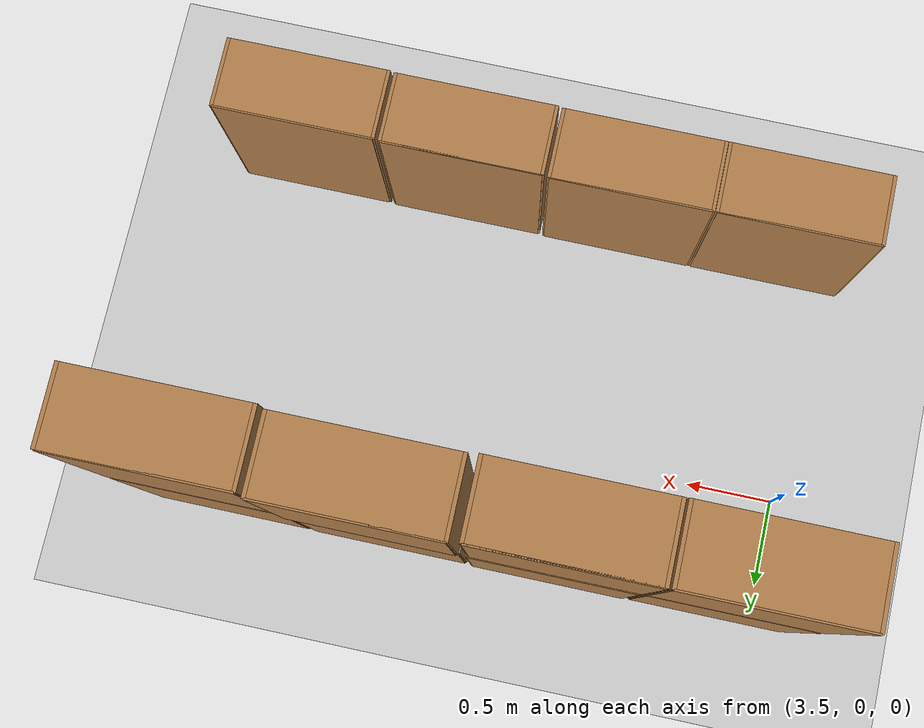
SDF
<sdf version="1.6">
 <world name="default">
  <model name="ground_plane">
   <static>1</static>
   <link name="link">
    <collision name="collision">
     <geometry><plane><normal>0 0 1</normal><size>100 100</size></plane></geometry>
     <surface>
      <contact><collide_bitmask>65535</collide_bitmask></contact>
      <friction><ode><mu>100</mu><mu2>50</mu2></ode></friction>
     </surface>
    </collision>
    <visual name="visual">
     <cast_shadows>0</cast_shadows>
     <geometry><plane><normal>0 0 1</normal><size>100 100</size></plane></geometry>
     <material>
      <script><uri>file://media/materials/scripts/gazebo.material</uri><name>Gazebo/Grey</name></script>
     </material>
    </visual>
   </link>
  </model>
  <model name="bookshelf">
   <static>1</static>
   <link name="link">
    <inertial><mass>1</mass></inertial>
    <collision name="back">
     <pose>0 0.005 0.6 0 -0 0</pose>
     <geometry><box><size>0.9 0.01 1.2</size></box></geometry>
    </collision>
    <visual name="visual1">
     <pose>0 0.005 0.6 0 -0 0</pose>
     <geometry><box><size>0.9 0.01 1.2</size></box></geometry>
     <material>
      <script><uri>file://media/materials/scripts/gazebo.material</uri><name>Gazebo/Wood</name></script>
     </material>
    </visual>
    <collision name="left_side">
     <pose>0.45 -0.195 0.6 0 -0 0</pose>
     <geometry><box><size>0.02 0.4 1.2</size></box></geometry>
    </collision>
    <visual name="visual2">
     <pose>0.45 -0.195 0.6 0 -0 0</pose>
     <geometry><box><size>0.02 0.4 1.2</size></box></geometry>
     <material>
      <script><uri>file://media/materials/scripts/gazebo.material</uri><name>Gazebo/Wood</name></script>
     </material>
    </visual>
    <collision name="right_side">
     <pose>-0.45 -0.195 0.6 0 -0 0</pose>
     <geometry><box><size>0.02 0.4 1.2</size></box></geometry>
    </collision>
    <visual name="visual3">
     <pose>-0.45 -0.195 0.6 0 -0 0</pose>
     <geometry><box><size>0.02 0.4 1.2</size></box></geometry>
     <material>
      <script><uri>file://media/materials/scripts/gazebo.material</uri><name>Gazebo/Wood</name></script>
     </material>
    </visual>
    <collision name="bottom">
     <pose>0 -0.195 0.03 0 -0 0</pose>
     <geometry><box><size>0.88 0.4 0.06</size></box></geometry>
    </collision>
    <visual name="visual4">
     <pose>0 -0.195 0.03 0 -0 0</pose>
     <geometry><box><size>0.88 0.4 0.06</size></box></geometry>
     <material>
      <script><uri>file://media/materials/scripts/gazebo.material</uri><name>Gazebo/Wood</name></script>
     </material>
    </visual>
    <collision name="top">
     <pose>0 -0.195 1.19 0 -0 0</pose>
     <geometry><box><size>0.88 0.4 0.02</size></box></geometry>
    </collision>
    <visual name="visual5">
     <pose>0 -0.195 1.19 0 -0 0</pose>
     <geometry><box><size>0.88 0.4 0.02</size></box></geometry>
     <material>
      <script><uri>file://media/materials/scripts/gazebo.material</uri><name>Gazebo/Wood</name></script>
     </material>
    </visual>
    <collision name="low_shelf">
     <pose>0 -0.195 0.43 0 -0 0</pose>
     <geometry><box><size>0.88 0.4 0.02</size></box></geometry>
    </collision>
    <visual name="visual6">
     <pose>0 -0.195 0.43 0 -0 0</pose>
     <geometry><box><size>0.88 0.4 0.02</size></box></geometry>
     <material>
      <script><uri>file://media/materials/scripts/gazebo.material</uri><name>Gazebo/Wood</name></script>
     </material>
    </visual>
    <collision name="high_shelf">
     <pose>0 -0.195 0.8 0 -0 0</pose>
     <geometry><box><size>0.88 0.4 0.02</size></box></geometry>
    </collision>
    <visual name="visual7">
     <pose>0 -0.195 0.8 0 -0 0</pose>
     <geometry><box><size>0.88 0.4 0.02</size></box></geometry>
     <material>
      <script><uri>file://media/materials/scripts/gazebo.material</uri><name>Gazebo/Wood</name></script>
     </material>
    </visual>
   </link>
   <pose>3.75992 0.728747 0 0 -0 0</pose>
  </model>
  <model name="bookshelf_0">
   <static>1</static>
   <link name="link">
    <inertial><mass>1</mass></inertial>
    <collision name="back">
     <pose>0 0.005 0.6 0 -0 0</pose>
     <geometry><box><size>0.9 0.01 1.2</size></box></geometry>
    </collision>
    <visual name="visual1">
     <pose>0 0.005 0.6 0 -0 0</pose>
     <geometry><box><size>0.9 0.01 1.2</size></box></geometry>
     <material>
      <script><uri>file://media/materials/scripts/gazebo.material</uri><name>Gazebo/Wood</name></script>
     </material>
    </visual>
    <collision name="left_side">
     <pose>0.45 -0.195 0.6 0 -0 0</pose>
     <geometry><box><size>0.02 0.4 1.2</size></box></geometry>
    </collision>
    <visual name="visual2">
     <pose>0.45 -0.195 0.6 0 -0 0</pose>
     <geometry><box><size>0.02 0.4 1.2</size></box></geometry>
     <material>
      <script><uri>file://media/materials/scripts/gazebo.material</uri><name>Gazebo/Wood</name></script>
     </material>
    </visual>
    <collision name="right_side">
     <pose>-0.45 -0.195 0.6 0 -0 0</pose>
     <geometry><box><size>0.02 0.4 1.2</size></box></geometry>
    </collision>
    <visual name="visual3">
     <pose>-0.45 -0.195 0.6 0 -0 0</pose>
     <geometry><box><size>0.02 0.4 1.2</size></box></geometry>
     <material>
      <script><uri>file://media/materials/scripts/gazebo.material</uri><name>Gazebo/Wood</name></script>
     </material>
    </visual>
    <collision name="bottom">
     <pose>0 -0.195 0.03 0 -0 0</pose>
     <geometry><box><size>0.88 0.4 0.06</size></box></geometry>
    </collision>
    <visual name="visual4">
     <pose>0 -0.195 0.03 0 -0 0</pose>
     <geometry><box><size>0.88 0.4 0.06</size></box></geometry>
     <material>
      <script><uri>file://media/materials/scripts/gazebo.material</uri><name>Gazebo/Wood</name></script>
     </material>
    </visual>
    <collision name="top">
     <pose>0 -0.195 1.19 0 -0 0</pose>
     <geometry><box><size>0.88 0.4 0.02</size></box></geometry>
    </collision>
    <visual name="visual5">
     <pose>0 -0.195 1.19 0 -0 0</pose>
     <geometry><box><size>0.88 0.4 0.02</size></box></geometry>
     <material>
      <script><uri>file://media/materials/scripts/gazebo.material</uri><name>Gazebo/Wood</name></script>
     </material>
    </visual>
    <collision name="low_shelf">
     <pose>0 -0.195 0.43 0 -0 0</pose>
     <geometry><box><size>0.88 0.4 0.02</size></box></geometry>
    </collision>
    <visual name="visual6">
     <pose>0 -0.195 0.43 0 -0 0</pose>
     <geometry><box><size>0.88 0.4 0.02</size></box></geometry>
     <material>
      <script><uri>file://media/materials/scripts/gazebo.material</uri><name>Gazebo/Wood</name></script>
     </material>
    </visual>
    <collision name="high_shelf">
     <pose>0 -0.195 0.8 0 -0 0</pose>
     <geometry><box><size>0.88 0.4 0.02</size></box></geometry>
    </collision>
    <visual name="visual7">
     <pose>0 -0.195 0.8 0 -0 0</pose>
     <geometry><box><size>0.88 0.4 0.02</size></box></geometry>
     <material>
      <script><uri>file://media/materials/scripts/gazebo.material</uri><name>Gazebo/Wood</name></script>
     </material>
    </visual>
   </link>
   <pose>4.70239 0.732854 0 0 -0 0</pose>
  </model>
  <model name="bookshelf_1">
   <static>1</static>
   <link name="link">
    <inertial><mass>1</mass></inertial>
    <collision name="back">
     <pose>0 0.005 0.6 0 -0 0</pose>
     <geometry><box><size>0.9 0.01 1.2</size></box></geometry>
    </collision>
    <visual name="visual1">
     <pose>0 0.005 0.6 0 -0 0</pose>
     <geometry><box><size>0.9 0.01 1.2</size></box></geometry>
     <material>
      <script><uri>file://media/materials/scripts/gazebo.material</uri><name>Gazebo/Wood</name></script>
     </material>
    </visual>
    <collision name="left_side">
     <pose>0.45 -0.195 0.6 0 -0 0</pose>
     <geometry><box><size>0.02 0.4 1.2</size></box></geometry>
    </collision>
    <visual name="visual2">
     <pose>0.45 -0.195 0.6 0 -0 0</pose>
     <geometry><box><size>0.02 0.4 1.2</size></box></geometry>
     <material>
      <script><uri>file://media/materials/scripts/gazebo.material</uri><name>Gazebo/Wood</name></script>
     </material>
    </visual>
    <collision name="right_side">
     <pose>-0.45 -0.195 0.6 0 -0 0</pose>
     <geometry><box><size>0.02 0.4 1.2</size></box></geometry>
    </collision>
    <visual name="visual3">
     <pose>-0.45 -0.195 0.6 0 -0 0</pose>
     <geometry><box><size>0.02 0.4 1.2</size></box></geometry>
     <material>
      <script><uri>file://media/materials/scripts/gazebo.material</uri><name>Gazebo/Wood</name></script>
     </material>
    </visual>
    <collision name="bottom">
     <pose>0 -0.195 0.03 0 -0 0</pose>
     <geometry><box><size>0.88 0.4 0.06</size></box></geometry>
    </collision>
    <visual name="visual4">
     <pose>0 -0.195 0.03 0 -0 0</pose>
     <geometry><box><size>0.88 0.4 0.06</size></box></geometry>
     <material>
      <script><uri>file://media/materials/scripts/gazebo.material</uri><name>Gazebo/Wood</name></script>
     </material>
    </visual>
    <collision name="top">
     <pose>0 -0.195 1.19 0 -0 0</pose>
     <geometry><box><size>0.88 0.4 0.02</size></box></geometry>
    </collision>
    <visual name="visual5">
     <pose>0 -0.195 1.19 0 -0 0</pose>
     <geometry><box><size>0.88 0.4 0.02</size></box></geometry>
     <material>
      <script><uri>file://media/materials/scripts/gazebo.material</uri><name>Gazebo/Wood</name></script>
     </material>
    </visual>
    <collision name="low_shelf">
     <pose>0 -0.195 0.43 0 -0 0</pose>
     <geometry><box><size>0.88 0.4 0.02</size></box></geometry>
    </collision>
    <visual name="visual6">
     <pose>0 -0.195 0.43 0 -0 0</pose>
     <geometry><box><size>0.88 0.4 0.02</size></box></geometry>
     <material>
      <script><uri>file://media/materials/scripts/gazebo.material</uri><name>Gazebo/Wood</name></script>
     </material>
    </visual>
    <collision name="high_shelf">
     <pose>0 -0.195 0.8 0 -0 0</pose>
     <geometry><box><size>0.88 0.4 0.02</size></box></geometry>
    </collision>
    <visual name="visual7">
     <pose>0 -0.195 0.8 0 -0 0</pose>
     <geometry><box><size>0.88 0.4 0.02</size></box></geometry>
     <material>
      <script><uri>file://media/materials/scripts/gazebo.material</uri><name>Gazebo/Wood</name></script>
     </material>
    </visual>
   </link>
   <pose>5.65072 0.725474 0 0 -0 0</pose>
  </model>
  <model name="bookshelf_2">
   <static>1</static>
   <link name="link">
    <inertial><mass>1</mass></inertial>
    <collision name="back">
     <pose>0 0.005 0.6 0 -0 0</pose>
     <geometry><box><size>0.9 0.01 1.2</size></box></geometry>
    </collision>
    <visual name="visual1">
     <pose>0 0.005 0.6 0 -0 0</pose>
     <geometry><box><size>0.9 0.01 1.2</size></box></geometry>
     <material>
      <script><uri>file://media/materials/scripts/gazebo.material</uri><name>Gazebo/Wood</name></script>
     </material>
    </visual>
    <collision name="left_side">
     <pose>0.45 -0.195 0.6 0 -0 0</pose>
     <geometry><box><size>0.02 0.4 1.2</size></box></geometry>
    </collision>
    <visual name="visual2">
     <pose>0.45 -0.195 0.6 0 -0 0</pose>
     <geometry><box><size>0.02 0.4 1.2</size></box></geometry>
     <material>
      <script><uri>file://media/materials/scripts/gazebo.material</uri><name>Gazebo/Wood</name></script>
     </material>
    </visual>
    <collision name="right_side">
     <pose>-0.45 -0.195 0.6 0 -0 0</pose>
     <geometry><box><size>0.02 0.4 1.2</size></box></geometry>
    </collision>
    <visual name="visual3">
     <pose>-0.45 -0.195 0.6 0 -0 0</pose>
     <geometry><box><size>0.02 0.4 1.2</size></box></geometry>
     <material>
      <script><uri>file://media/materials/scripts/gazebo.material</uri><name>Gazebo/Wood</name></script>
     </material>
    </visual>
    <collision name="bottom">
     <pose>0 -0.195 0.03 0 -0 0</pose>
     <geometry><box><size>0.88 0.4 0.06</size></box></geometry>
    </collision>
    <visual name="visual4">
     <pose>0 -0.195 0.03 0 -0 0</pose>
     <geometry><box><size>0.88 0.4 0.06</size></box></geometry>
     <material>
      <script><uri>file://media/materials/scripts/gazebo.material</uri><name>Gazebo/Wood</name></script>
     </material>
    </visual>
    <collision name="top">
     <pose>0 -0.195 1.19 0 -0 0</pose>
     <geometry><box><size>0.88 0.4 0.02</size></box></geometry>
    </collision>
    <visual name="visual5">
     <pose>0 -0.195 1.19 0 -0 0</pose>
     <geometry><box><size>0.88 0.4 0.02</size></box></geometry>
     <material>
      <script><uri>file://media/materials/scripts/gazebo.material</uri><name>Gazebo/Wood</name></script>
     </material>
    </visual>
    <collision name="low_shelf">
     <pose>0 -0.195 0.43 0 -0 0</pose>
     <geometry><box><size>0.88 0.4 0.02</size></box></geometry>
    </collision>
    <visual name="visual6">
     <pose>0 -0.195 0.43 0 -0 0</pose>
     <geometry><box><size>0.88 0.4 0.02</size></box></geometry>
     <material>
      <script><uri>file://media/materials/scripts/gazebo.material</uri><name>Gazebo/Wood</name></script>
     </material>
    </visual>
    <collision name="high_shelf">
     <pose>0 -0.195 0.8 0 -0 0</pose>
     <geometry><box><size>0.88 0.4 0.02</size></box></geometry>
    </collision>
    <visual name="visual7">
     <pose>0 -0.195 0.8 0 -0 0</pose>
     <geometry><box><size>0.88 0.4 0.02</size></box></geometry>
     <material>
      <script><uri>file://media/materials/scripts/gazebo.material</uri><name>Gazebo/Wood</name></script>
     </material>
    </visual>
   </link>
   <pose>6.59516 0.720973 0 0 -0 0</pose>
  </model>
  <model name="bookshelf_3">
   <static>1</static>
   <link name="link">
    <inertial><mass>1</mass></inertial>
    <collision name="back">
     <pose>0 0.005 0.6 0 -0 0</pose>
     <geometry><box><size>0.9 0.01 1.2</size></box></geometry>
    </collision>
    <visual name="visual1">
     <pose>0 0.005 0.6 0 -0 0</pose>
     <geometry><box><size>0.9 0.01 1.2</size></box></geometry>
     <material>
      <script><uri>file://media/materials/scripts/gazebo.material</uri><name>Gazebo/Wood</name></script>
     </material>
    </visual>
    <collision name="left_side">
     <pose>0.45 -0.195 0.6 0 -0 0</pose>
     <geometry><box><size>0.02 0.4 1.2</size></box></geometry>
    </collision>
    <visual name="visual2">
     <pose>0.45 -0.195 0.6 0 -0 0</pose>
     <geometry><box><size>0.02 0.4 1.2</size></box></geometry>
     <material>
      <script><uri>file://media/materials/scripts/gazebo.material</uri><name>Gazebo/Wood</name></script>
     </material>
    </visual>
    <collision name="right_side">
     <pose>-0.45 -0.195 0.6 0 -0 0</pose>
     <geometry><box><size>0.02 0.4 1.2</size></box></geometry>
    </collision>
    <visual name="visual3">
     <pose>-0.45 -0.195 0.6 0 -0 0</pose>
     <geometry><box><size>0.02 0.4 1.2</size></box></geometry>
     <material>
      <script><uri>file://media/materials/scripts/gazebo.material</uri><name>Gazebo/Wood</name></script>
     </material>
    </visual>
    <collision name="bottom">
     <pose>0 -0.195 0.03 0 -0 0</pose>
     <geometry><box><size>0.88 0.4 0.06</size></box></geometry>
    </collision>
    <visual name="visual4">
     <pose>0 -0.195 0.03 0 -0 0</pose>
     <geometry><box><size>0.88 0.4 0.06</size></box></geometry>
     <material>
      <script><uri>file://media/materials/scripts/gazebo.material</uri><name>Gazebo/Wood</name></script>
     </material>
    </visual>
    <collision name="top">
     <pose>0 -0.195 1.19 0 -0 0</pose>
     <geometry><box><size>0.88 0.4 0.02</size></box></geometry>
    </collision>
    <visual name="visual5">
     <pose>0 -0.195 1.19 0 -0 0</pose>
     <geometry><box><size>0.88 0.4 0.02</size></box></geometry>
     <material>
      <script><uri>file://media/materials/scripts/gazebo.material</uri><name>Gazebo/Wood</name></script>
     </material>
    </visual>
    <collision name="low_shelf">
     <pose>0 -0.195 0.43 0 -0 0</pose>
     <geometry><box><size>0.88 0.4 0.02</size></box></geometry>
    </collision>
    <visual name="visual6">
     <pose>0 -0.195 0.43 0 -0 0</pose>
     <geometry><box><size>0.88 0.4 0.02</size></box></geometry>
     <material>
      <script><uri>file://media/materials/scripts/gazebo.material</uri><name>Gazebo/Wood</name></script>
     </material>
    </visual>
    <collision name="high_shelf">
     <pose>0 -0.195 0.8 0 -0 0</pose>
     <geometry><box><size>0.88 0.4 0.02</size></box></geometry>
    </collision>
    <visual name="visual7">
     <pose>0 -0.195 0.8 0 -0 0</pose>
     <geometry><box><size>0.88 0.4 0.02</size></box></geometry>
     <material>
      <script><uri>file://media/materials/scripts/gazebo.material</uri><name>Gazebo/Wood</name></script>
     </material>
    </visual>
   </link>
   <pose>3.76166 0.727265 1.22144 0 -0 0</pose>
  </model>
  <model name="bookshelf_4">
   <static>1</static>
   <link name="link">
    <inertial><mass>1</mass></inertial>
    <collision name="back">
     <pose>0 0.005 0.6 0 -0 0</pose>
     <geometry><box><size>0.9 0.01 1.2</size></box></geometry>
    </collision>
    <visual name="visual1">
     <pose>0 0.005 0.6 0 -0 0</pose>
     <geometry><box><size>0.9 0.01 1.2</size></box></geometry>
     <material>
      <script><uri>file://media/materials/scripts/gazebo.material</uri><name>Gazebo/Wood</name></script>
     </material>
    </visual>
    <collision name="left_side">
     <pose>0.45 -0.195 0.6 0 -0 0</pose>
     <geometry><box><size>0.02 0.4 1.2</size></box></geometry>
    </collision>
    <visual name="visual2">
     <pose>0.45 -0.195 0.6 0 -0 0</pose>
     <geometry><box><size>0.02 0.4 1.2</size></box></geometry>
     <material>
      <script><uri>file://media/materials/scripts/gazebo.material</uri><name>Gazebo/Wood</name></script>
     </material>
    </visual>
    <collision name="right_side">
     <pose>-0.45 -0.195 0.6 0 -0 0</pose>
     <geometry><box><size>0.02 0.4 1.2</size></box></geometry>
    </collision>
    <visual name="visual3">
     <pose>-0.45 -0.195 0.6 0 -0 0</pose>
     <geometry><box><size>0.02 0.4 1.2</size></box></geometry>
     <material>
      <script><uri>file://media/materials/scripts/gazebo.material</uri><name>Gazebo/Wood</name></script>
     </material>
    </visual>
    <collision name="bottom">
     <pose>0 -0.195 0.03 0 -0 0</pose>
     <geometry><box><size>0.88 0.4 0.06</size></box></geometry>
    </collision>
    <visual name="visual4">
     <pose>0 -0.195 0.03 0 -0 0</pose>
     <geometry><box><size>0.88 0.4 0.06</size></box></geometry>
     <material>
      <script><uri>file://media/materials/scripts/gazebo.material</uri><name>Gazebo/Wood</name></script>
     </material>
    </visual>
    <collision name="top">
     <pose>0 -0.195 1.19 0 -0 0</pose>
     <geometry><box><size>0.88 0.4 0.02</size></box></geometry>
    </collision>
    <visual name="visual5">
     <pose>0 -0.195 1.19 0 -0 0</pose>
     <geometry><box><size>0.88 0.4 0.02</size></box></geometry>
     <material>
      <script><uri>file://media/materials/scripts/gazebo.material</uri><name>Gazebo/Wood</name></script>
     </material>
    </visual>
    <collision name="low_shelf">
     <pose>0 -0.195 0.43 0 -0 0</pose>
     <geometry><box><size>0.88 0.4 0.02</size></box></geometry>
    </collision>
    <visual name="visual6">
     <pose>0 -0.195 0.43 0 -0 0</pose>
     <geometry><box><size>0.88 0.4 0.02</size></box></geometry>
     <material>
      <script><uri>file://media/materials/scripts/gazebo.material</uri><name>Gazebo/Wood</name></script>
     </material>
    </visual>
    <collision name="high_shelf">
     <pose>0 -0.195 0.8 0 -0 0</pose>
     <geometry><box><size>0.88 0.4 0.02</size></box></geometry>
    </collision>
    <visual name="visual7">
     <pose>0 -0.195 0.8 0 -0 0</pose>
     <geometry><box><size>0.88 0.4 0.02</size></box></geometry>
     <material>
      <script><uri>file://media/materials/scripts/gazebo.material</uri><name>Gazebo/Wood</name></script>
     </material>
    </visual>
   </link>
   <pose>4.69249 0.728372 1.22003 0 -0 0</pose>
  </model>
  <model name="bookshelf_5">
   <static>1</static>
   <link name="link">
    <inertial><mass>1</mass></inertial>
    <collision name="back">
     <pose>0 0.005 0.6 0 -0 0</pose>
     <geometry><box><size>0.9 0.01 1.2</size></box></geometry>
    </collision>
    <visual name="visual1">
     <pose>0 0.005 0.6 0 -0 0</pose>
     <geometry><box><size>0.9 0.01 1.2</size></box></geometry>
     <material>
      <script><uri>file://media/materials/scripts/gazebo.material</uri><name>Gazebo/Wood</name></script>
     </material>
    </visual>
    <collision name="left_side">
     <pose>0.45 -0.195 0.6 0 -0 0</pose>
     <geometry><box><size>0.02 0.4 1.2</size></box></geometry>
    </collision>
    <visual name="visual2">
     <pose>0.45 -0.195 0.6 0 -0 0</pose>
     <geometry><box><size>0.02 0.4 1.2</size></box></geometry>
     <material>
      <script><uri>file://media/materials/scripts/gazebo.material</uri><name>Gazebo/Wood</name></script>
     </material>
    </visual>
    <collision name="right_side">
     <pose>-0.45 -0.195 0.6 0 -0 0</pose>
     <geometry><box><size>0.02 0.4 1.2</size></box></geometry>
    </collision>
    <visual name="visual3">
     <pose>-0.45 -0.195 0.6 0 -0 0</pose>
     <geometry><box><size>0.02 0.4 1.2</size></box></geometry>
     <material>
      <script><uri>file://media/materials/scripts/gazebo.material</uri><name>Gazebo/Wood</name></script>
     </material>
    </visual>
    <collision name="bottom">
     <pose>0 -0.195 0.03 0 -0 0</pose>
     <geometry><box><size>0.88 0.4 0.06</size></box></geometry>
    </collision>
    <visual name="visual4">
     <pose>0 -0.195 0.03 0 -0 0</pose>
     <geometry><box><size>0.88 0.4 0.06</size></box></geometry>
     <material>
      <script><uri>file://media/materials/scripts/gazebo.material</uri><name>Gazebo/Wood</name></script>
     </material>
    </visual>
    <collision name="top">
     <pose>0 -0.195 1.19 0 -0 0</pose>
     <geometry><box><size>0.88 0.4 0.02</size></box></geometry>
    </collision>
    <visual name="visual5">
     <pose>0 -0.195 1.19 0 -0 0</pose>
     <geometry><box><size>0.88 0.4 0.02</size></box></geometry>
     <material>
      <script><uri>file://media/materials/scripts/gazebo.material</uri><name>Gazebo/Wood</name></script>
     </material>
    </visual>
    <collision name="low_shelf">
     <pose>0 -0.195 0.43 0 -0 0</pose>
     <geometry><box><size>0.88 0.4 0.02</size></box></geometry>
    </collision>
    <visual name="visual6">
     <pose>0 -0.195 0.43 0 -0 0</pose>
     <geometry><box><size>0.88 0.4 0.02</size></box></geometry>
     <material>
      <script><uri>file://media/materials/scripts/gazebo.material</uri><name>Gazebo/Wood</name></script>
     </material>
    </visual>
    <collision name="high_shelf">
     <pose>0 -0.195 0.8 0 -0 0</pose>
     <geometry><box><size>0.88 0.4 0.02</size></box></geometry>
    </collision>
    <visual name="visual7">
     <pose>0 -0.195 0.8 0 -0 0</pose>
     <geometry><box><size>0.88 0.4 0.02</size></box></geometry>
     <material>
      <script><uri>file://media/materials/scripts/gazebo.material</uri><name>Gazebo/Wood</name></script>
     </material>
    </visual>
   </link>
   <pose>5.65883 0.73552 1.21624 0 -0 0</pose>
  </model>
  <model name="bookshelf_6">
   <static>1</static>
   <link name="link">
    <inertial><mass>1</mass></inertial>
    <collision name="back">
     <pose>0 0.005 0.6 0 -0 0</pose>
     <geometry><box><size>0.9 0.01 1.2</size></box></geometry>
    </collision>
    <visual name="visual1">
     <pose>0 0.005 0.6 0 -0 0</pose>
     <geometry><box><size>0.9 0.01 1.2</size></box></geometry>
     <material>
      <script><uri>file://media/materials/scripts/gazebo.material</uri><name>Gazebo/Wood</name></script>
     </material>
    </visual>
    <collision name="left_side">
     <pose>0.45 -0.195 0.6 0 -0 0</pose>
     <geometry><box><size>0.02 0.4 1.2</size></box></geometry>
    </collision>
    <visual name="visual2">
     <pose>0.45 -0.195 0.6 0 -0 0</pose>
     <geometry><box><size>0.02 0.4 1.2</size></box></geometry>
     <material>
      <script><uri>file://media/materials/scripts/gazebo.material</uri><name>Gazebo/Wood</name></script>
     </material>
    </visual>
    <collision name="right_side">
     <pose>-0.45 -0.195 0.6 0 -0 0</pose>
     <geometry><box><size>0.02 0.4 1.2</size></box></geometry>
    </collision>
    <visual name="visual3">
     <pose>-0.45 -0.195 0.6 0 -0 0</pose>
     <geometry><box><size>0.02 0.4 1.2</size></box></geometry>
     <material>
      <script><uri>file://media/materials/scripts/gazebo.material</uri><name>Gazebo/Wood</name></script>
     </material>
    </visual>
    <collision name="bottom">
     <pose>0 -0.195 0.03 0 -0 0</pose>
     <geometry><box><size>0.88 0.4 0.06</size></box></geometry>
    </collision>
    <visual name="visual4">
     <pose>0 -0.195 0.03 0 -0 0</pose>
     <geometry><box><size>0.88 0.4 0.06</size></box></geometry>
     <material>
      <script><uri>file://media/materials/scripts/gazebo.material</uri><name>Gazebo/Wood</name></script>
     </material>
    </visual>
    <collision name="top">
     <pose>0 -0.195 1.19 0 -0 0</pose>
     <geometry><box><size>0.88 0.4 0.02</size></box></geometry>
    </collision>
    <visual name="visual5">
     <pose>0 -0.195 1.19 0 -0 0</pose>
     <geometry><box><size>0.88 0.4 0.02</size></box></geometry>
     <material>
      <script><uri>file://media/materials/scripts/gazebo.material</uri><name>Gazebo/Wood</name></script>
     </material>
    </visual>
    <collision name="low_shelf">
     <pose>0 -0.195 0.43 0 -0 0</pose>
     <geometry><box><size>0.88 0.4 0.02</size></box></geometry>
    </collision>
    <visual name="visual6">
     <pose>0 -0.195 0.43 0 -0 0</pose>
     <geometry><box><size>0.88 0.4 0.02</size></box></geometry>
     <material>
      <script><uri>file://media/materials/scripts/gazebo.material</uri><name>Gazebo/Wood</name></script>
     </material>
    </visual>
    <collision name="high_shelf">
     <pose>0 -0.195 0.8 0 -0 0</pose>
     <geometry><box><size>0.88 0.4 0.02</size></box></geometry>
    </collision>
    <visual name="visual7">
     <pose>0 -0.195 0.8 0 -0 0</pose>
     <geometry><box><size>0.88 0.4 0.02</size></box></geometry>
     <material>
      <script><uri>file://media/materials/scripts/gazebo.material</uri><name>Gazebo/Wood</name></script>
     </material>
    </visual>
   </link>
   <pose>6.60352 0.719536 1.22219 0 -0 0</pose>
  </model>
  <model name="bookshelf_7">
   <static>1</static>
   <link name="link">
    <inertial><mass>1</mass></inertial>
    <collision name="back">
     <pose>0 0.005 0.6 0 -0 0</pose>
     <geometry><box><size>0.9 0.01 1.2</size></box></geometry>
    </collision>
    <visual name="visual1">
     <pose>0 0.005 0.6 0 -0 0</pose>
     <geometry><box><size>0.9 0.01 1.2</size></box></geometry>
     <material>
      <script><uri>file://media/materials/scripts/gazebo.material</uri><name>Gazebo/Wood</name></script>
     </material>
    </visual>
    <collision name="left_side">
     <pose>0.45 -0.195 0.6 0 -0 0</pose>
     <geometry><box><size>0.02 0.4 1.2</size></box></geometry>
    </collision>
    <visual name="visual2">
     <pose>0.45 -0.195 0.6 0 -0 0</pose>
     <geometry><box><size>0.02 0.4 1.2</size></box></geometry>
     <material>
      <script><uri>file://media/materials/scripts/gazebo.material</uri><name>Gazebo/Wood</name></script>
     </material>
    </visual>
    <collision name="right_side">
     <pose>-0.45 -0.195 0.6 0 -0 0</pose>
     <geometry><box><size>0.02 0.4 1.2</size></box></geometry>
    </collision>
    <visual name="visual3">
     <pose>-0.45 -0.195 0.6 0 -0 0</pose>
     <geometry><box><size>0.02 0.4 1.2</size></box></geometry>
     <material>
      <script><uri>file://media/materials/scripts/gazebo.material</uri><name>Gazebo/Wood</name></script>
     </material>
    </visual>
    <collision name="bottom">
     <pose>0 -0.195 0.03 0 -0 0</pose>
     <geometry><box><size>0.88 0.4 0.06</size></box></geometry>
    </collision>
    <visual name="visual4">
     <pose>0 -0.195 0.03 0 -0 0</pose>
     <geometry><box><size>0.88 0.4 0.06</size></box></geometry>
     <material>
      <script><uri>file://media/materials/scripts/gazebo.material</uri><name>Gazebo/Wood</name></script>
     </material>
    </visual>
    <collision name="top">
     <pose>0 -0.195 1.19 0 -0 0</pose>
     <geometry><box><size>0.88 0.4 0.02</size></box></geometry>
    </collision>
    <visual name="visual5">
     <pose>0 -0.195 1.19 0 -0 0</pose>
     <geometry><box><size>0.88 0.4 0.02</size></box></geometry>
     <material>
      <script><uri>file://media/materials/scripts/gazebo.material</uri><name>Gazebo/Wood</name></script>
     </material>
    </visual>
    <collision name="low_shelf">
     <pose>0 -0.195 0.43 0 -0 0</pose>
     <geometry><box><size>0.88 0.4 0.02</size></box></geometry>
    </collision>
    <visual name="visual6">
     <pose>0 -0.195 0.43 0 -0 0</pose>
     <geometry><box><size>0.88 0.4 0.02</size></box></geometry>
     <material>
      <script><uri>file://media/materials/scripts/gazebo.material</uri><name>Gazebo/Wood</name></script>
     </material>
    </visual>
    <collision name="high_shelf">
     <pose>0 -0.195 0.8 0 -0 0</pose>
     <geometry><box><size>0.88 0.4 0.02</size></box></geometry>
    </collision>
    <visual name="visual7">
     <pose>0 -0.195 0.8 0 -0 0</pose>
     <geometry><box><size>0.88 0.4 0.02</size></box></geometry>
     <material>
      <script><uri>file://media/materials/scripts/gazebo.material</uri><name>Gazebo/Wood</name></script>
     </material>
    </visual>
   </link>
   <pose>3.78462 -1.33522 0 0 -0 0</pose>
  </model>
  <model name="bookshelf_8">
   <static>1</static>
   <link name="link">
    <inertial><mass>1</mass></inertial>
    <collision name="back">
     <pose>0 0.005 0.6 0 -0 0</pose>
     <geometry><box><size>0.9 0.01 1.2</size></box></geometry>
    </collision>
    <visual name="visual1">
     <pose>0 0.005 0.6 0 -0 0</pose>
     <geometry><box><size>0.9 0.01 1.2</size></box></geometry>
     <material>
      <script><uri>file://media/materials/scripts/gazebo.material</uri><name>Gazebo/Wood</name></script>
     </material>
    </visual>
    <collision name="left_side">
     <pose>0.45 -0.195 0.6 0 -0 0</pose>
     <geometry><box><size>0.02 0.4 1.2</size></box></geometry>
    </collision>
    <visual name="visual2">
     <pose>0.45 -0.195 0.6 0 -0 0</pose>
     <geometry><box><size>0.02 0.4 1.2</size></box></geometry>
     <material>
      <script><uri>file://media/materials/scripts/gazebo.material</uri><name>Gazebo/Wood</name></script>
     </material>
    </visual>
    <collision name="right_side">
     <pose>-0.45 -0.195 0.6 0 -0 0</pose>
     <geometry><box><size>0.02 0.4 1.2</size></box></geometry>
    </collision>
    <visual name="visual3">
     <pose>-0.45 -0.195 0.6 0 -0 0</pose>
     <geometry><box><size>0.02 0.4 1.2</size></box></geometry>
     <material>
      <script><uri>file://media/materials/scripts/gazebo.material</uri><name>Gazebo/Wood</name></script>
     </material>
    </visual>
    <collision name="bottom">
     <pose>0 -0.195 0.03 0 -0 0</pose>
     <geometry><box><size>0.88 0.4 0.06</size></box></geometry>
    </collision>
    <visual name="visual4">
     <pose>0 -0.195 0.03 0 -0 0</pose>
     <geometry><box><size>0.88 0.4 0.06</size></box></geometry>
     <material>
      <script><uri>file://media/materials/scripts/gazebo.material</uri><name>Gazebo/Wood</name></script>
     </material>
    </visual>
    <collision name="top">
     <pose>0 -0.195 1.19 0 -0 0</pose>
     <geometry><box><size>0.88 0.4 0.02</size></box></geometry>
    </collision>
    <visual name="visual5">
     <pose>0 -0.195 1.19 0 -0 0</pose>
     <geometry><box><size>0.88 0.4 0.02</size></box></geometry>
     <material>
      <script><uri>file://media/materials/scripts/gazebo.material</uri><name>Gazebo/Wood</name></script>
     </material>
    </visual>
    <collision name="low_shelf">
     <pose>0 -0.195 0.43 0 -0 0</pose>
     <geometry><box><size>0.88 0.4 0.02</size></box></geometry>
    </collision>
    <visual name="visual6">
     <pose>0 -0.195 0.43 0 -0 0</pose>
     <geometry><box><size>0.88 0.4 0.02</size></box></geometry>
     <material>
      <script><uri>file://media/materials/scripts/gazebo.material</uri><name>Gazebo/Wood</name></script>
     </material>
    </visual>
    <collision name="high_shelf">
     <pose>0 -0.195 0.8 0 -0 0</pose>
     <geometry><box><size>0.88 0.4 0.02</size></box></geometry>
    </collision>
    <visual name="visual7">
     <pose>0 -0.195 0.8 0 -0 0</pose>
     <geometry><box><size>0.88 0.4 0.02</size></box></geometry>
     <material>
      <script><uri>file://media/materials/scripts/gazebo.material</uri><name>Gazebo/Wood</name></script>
     </material>
    </visual>
   </link>
   <pose>4.70599 -1.33515 0 0 -0 0</pose>
  </model>
  <model name="bookshelf_9">
   <static>1</static>
   <link name="link">
    <inertial><mass>1</mass></inertial>
    <collision name="back">
     <pose>0 0.005 0.6 0 -0 0</pose>
     <geometry><box><size>0.9 0.01 1.2</size></box></geometry>
    </collision>
    <visual name="visual1">
     <pose>0 0.005 0.6 0 -0 0</pose>
     <geometry><box><size>0.9 0.01 1.2</size></box></geometry>
     <material>
      <script><uri>file://media/materials/scripts/gazebo.material</uri><name>Gazebo/Wood</name></script>
     </material>
    </visual>
    <collision name="left_side">
     <pose>0.45 -0.195 0.6 0 -0 0</pose>
     <geometry><box><size>0.02 0.4 1.2</size></box></geometry>
    </collision>
    <visual name="visual2">
     <pose>0.45 -0.195 0.6 0 -0 0</pose>
     <geometry><box><size>0.02 0.4 1.2</size></box></geometry>
     <material>
      <script><uri>file://media/materials/scripts/gazebo.material</uri><name>Gazebo/Wood</name></script>
     </material>
    </visual>
    <collision name="right_side">
     <pose>-0.45 -0.195 0.6 0 -0 0</pose>
     <geometry><box><size>0.02 0.4 1.2</size></box></geometry>
    </collision>
    <visual name="visual3">
     <pose>-0.45 -0.195 0.6 0 -0 0</pose>
     <geometry><box><size>0.02 0.4 1.2</size></box></geometry>
     <material>
      <script><uri>file://media/materials/scripts/gazebo.material</uri><name>Gazebo/Wood</name></script>
     </material>
    </visual>
    <collision name="bottom">
     <pose>0 -0.195 0.03 0 -0 0</pose>
     <geometry><box><size>0.88 0.4 0.06</size></box></geometry>
    </collision>
    <visual name="visual4">
     <pose>0 -0.195 0.03 0 -0 0</pose>
     <geometry><box><size>0.88 0.4 0.06</size></box></geometry>
     <material>
      <script><uri>file://media/materials/scripts/gazebo.material</uri><name>Gazebo/Wood</name></script>
     </material>
    </visual>
    <collision name="top">
     <pose>0 -0.195 1.19 0 -0 0</pose>
     <geometry><box><size>0.88 0.4 0.02</size></box></geometry>
    </collision>
    <visual name="visual5">
     <pose>0 -0.195 1.19 0 -0 0</pose>
     <geometry><box><size>0.88 0.4 0.02</size></box></geometry>
     <material>
      <script><uri>file://media/materials/scripts/gazebo.material</uri><name>Gazebo/Wood</name></script>
     </material>
    </visual>
    <collision name="low_shelf">
     <pose>0 -0.195 0.43 0 -0 0</pose>
     <geometry><box><size>0.88 0.4 0.02</size></box></geometry>
    </collision>
    <visual name="visual6">
     <pose>0 -0.195 0.43 0 -0 0</pose>
     <geometry><box><size>0.88 0.4 0.02</size></box></geometry>
     <material>
      <script><uri>file://media/materials/scripts/gazebo.material</uri><name>Gazebo/Wood</name></script>
     </material>
    </visual>
    <collision name="high_shelf">
     <pose>0 -0.195 0.8 0 -0 0</pose>
     <geometry><box><size>0.88 0.4 0.02</size></box></geometry>
    </collision>
    <visual name="visual7">
     <pose>0 -0.195 0.8 0 -0 0</pose>
     <geometry><box><size>0.88 0.4 0.02</size></box></geometry>
     <material>
      <script><uri>file://media/materials/scripts/gazebo.material</uri><name>Gazebo/Wood</name></script>
     </material>
    </visual>
   </link>
   <pose>5.64449 -1.34141 0 0 -0 0</pose>
  </model>
  <model name="bookshelf_10">
   <static>1</static>
   <link name="link">
    <inertial><mass>1</mass></inertial>
    <collision name="back">
     <pose>0 0.005 0.6 0 -0 0</pose>
     <geometry><box><size>0.9 0.01 1.2</size></box></geometry>
    </collision>
    <visual name="visual1">
     <pose>0 0.005 0.6 0 -0 0</pose>
     <geometry><box><size>0.9 0.01 1.2</size></box></geometry>
     <material>
      <script><uri>file://media/materials/scripts/gazebo.material</uri><name>Gazebo/Wood</name></script>
     </material>
    </visual>
    <collision name="left_side">
     <pose>0.45 -0.195 0.6 0 -0 0</pose>
     <geometry><box><size>0.02 0.4 1.2</size></box></geometry>
    </collision>
    <visual name="visual2">
     <pose>0.45 -0.195 0.6 0 -0 0</pose>
     <geometry><box><size>0.02 0.4 1.2</size></box></geometry>
     <material>
      <script><uri>file://media/materials/scripts/gazebo.material</uri><name>Gazebo/Wood</name></script>
     </material>
    </visual>
    <collision name="right_side">
     <pose>-0.45 -0.195 0.6 0 -0 0</pose>
     <geometry><box><size>0.02 0.4 1.2</size></box></geometry>
    </collision>
    <visual name="visual3">
     <pose>-0.45 -0.195 0.6 0 -0 0</pose>
     <geometry><box><size>0.02 0.4 1.2</size></box></geometry>
     <material>
      <script><uri>file://media/materials/scripts/gazebo.material</uri><name>Gazebo/Wood</name></script>
     </material>
    </visual>
    <collision name="bottom">
     <pose>0 -0.195 0.03 0 -0 0</pose>
     <geometry><box><size>0.88 0.4 0.06</size></box></geometry>
    </collision>
    <visual name="visual4">
     <pose>0 -0.195 0.03 0 -0 0</pose>
     <geometry><box><size>0.88 0.4 0.06</size></box></geometry>
     <material>
      <script><uri>file://media/materials/scripts/gazebo.material</uri><name>Gazebo/Wood</name></script>
     </material>
    </visual>
    <collision name="top">
     <pose>0 -0.195 1.19 0 -0 0</pose>
     <geometry><box><size>0.88 0.4 0.02</size></box></geometry>
    </collision>
    <visual name="visual5">
     <pose>0 -0.195 1.19 0 -0 0</pose>
     <geometry><box><size>0.88 0.4 0.02</size></box></geometry>
     <material>
      <script><uri>file://media/materials/scripts/gazebo.material</uri><name>Gazebo/Wood</name></script>
     </material>
    </visual>
    <collision name="low_shelf">
     <pose>0 -0.195 0.43 0 -0 0</pose>
     <geometry><box><size>0.88 0.4 0.02</size></box></geometry>
    </collision>
    <visual name="visual6">
     <pose>0 -0.195 0.43 0 -0 0</pose>
     <geometry><box><size>0.88 0.4 0.02</size></box></geometry>
     <material>
      <script><uri>file://media/materials/scripts/gazebo.material</uri><name>Gazebo/Wood</name></script>
     </material>
    </visual>
    <collision name="high_shelf">
     <pose>0 -0.195 0.8 0 -0 0</pose>
     <geometry><box><size>0.88 0.4 0.02</size></box></geometry>
    </collision>
    <visual name="visual7">
     <pose>0 -0.195 0.8 0 -0 0</pose>
     <geometry><box><size>0.88 0.4 0.02</size></box></geometry>
     <material>
      <script><uri>file://media/materials/scripts/gazebo.material</uri><name>Gazebo/Wood</name></script>
     </material>
    </visual>
   </link>
   <pose>6.58422 -1.34772 0 0 -0 0</pose>
  </model>
 </world>
</sdf>
